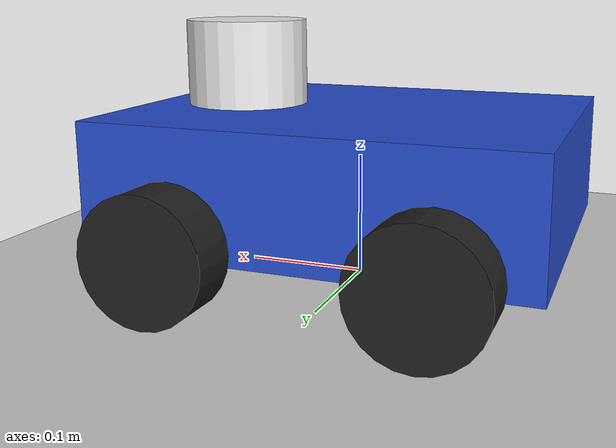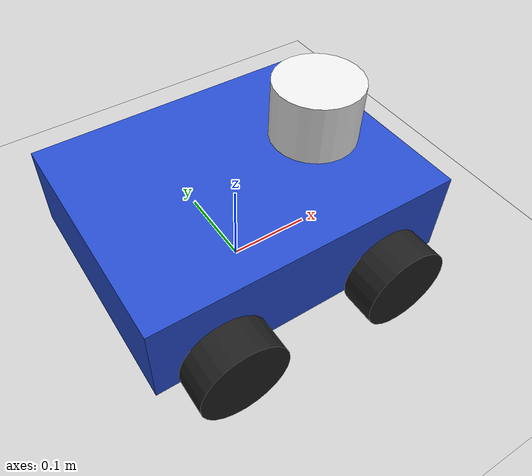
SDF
<sdf version="1.7">
 <world name="default">
  <light name="sun" type="directional">
   <pose>0 0 10 0 -0 0</pose>
   <diffuse>0.8 0.8 0.8 1</diffuse>
   <specular>0.2 0.2 0.2 1</specular>
   <attenuation>
    <range>1000</range>
    <constant>0.9</constant>
    <linear>0.01</linear>
    <quadratic>0.001</quadratic>
   </attenuation>
   <direction>-0.5 0.1 -0.9</direction>
   <spot><inner_angle>0</inner_angle><outer_angle>0</outer_angle><falloff>0</falloff></spot>
  </light>
  <model name="ground_plane">
   <static>1</static>
   <link name="link">
    <collision name="collision">
     <geometry><plane><normal>0 0 1</normal><size>100 100</size></plane></geometry>
     <surface>
      <contact><collide_bitmask>65535</collide_bitmask></contact>
      <friction><ode><mu>100</mu><mu2>50</mu2></ode></friction>
     </surface>
    </collision>
    <visual name="visual">
     <cast_shadows>0</cast_shadows>
     <geometry><plane><normal>0 0 1</normal><size>100 100</size></plane></geometry>
     <material>
      <script><uri>file://media/materials/scripts/gazebo.material</uri><name>Gazebo/Grey</name></script>
     </material>
    </visual>
   </link>
  </model>
  <gravity>0 0 -9.8</gravity>
  <magnetic_field>6e-06 2.3e-05 -4.2e-05</magnetic_field>
  <atmosphere type="adiabatic"/>
  <physics type="ode">
   <max_step_size>0.001</max_step_size>
   <real_time_factor>1</real_time_factor>
   <real_time_update_rate>1000</real_time_update_rate>
  </physics>
  <scene><ambient>0.4 0.4 0.4 1</ambient><background>0.7 0.7 0.7 1</background><shadows>1</shadows></scene>
  <spherical_coordinates>
   <surface_model>EARTH_WGS84</surface_model>
   <latitude_deg>0</latitude_deg>
   <longitude_deg>0</longitude_deg>
   <elevation>0</elevation>
   <heading_deg>0</heading_deg>
  </spherical_coordinates>
  <model name="nanobot">
   <link name="base_footprint">
    <inertial>
     <pose>0 0 0.07 0 -0 0</pose>
     <mass>1</mass>
     <inertia>
      <ixx>0.0015</ixx>
      <ixy>0</ixy>
      <ixz>0</ixz>
      <iyy>0.0041667</iyy>
      <iyz>0</iyz>
      <izz>0.00054167</izz>
     </inertia>
    </inertial>
    <collision name="base_footprint_fixed_joint_lump__collision_chasis_collision">
     <pose>0 0 0.07 0 -0 0</pose>
     <geometry><box><size>0.35 0.27 0.1</size></box></geometry>
    </collision>
    <collision name="base_footprint_fixed_joint_lump__collision_laser_link_collision_1">
     <pose>0.1 0 0.14 0 -0 0</pose>
     <geometry><cylinder><length>0.1</length><radius>0.05</radius></cylinder></geometry>
    </collision>
    <visual name="base_footprint_fixed_joint_lump__base_link_visual">
     <pose>0 0 0.07 0 -0 0</pose>
     <geometry><box><size>0.35 0.27 0.1</size></box></geometry>
     <material>
      <script><name>Gazebo/Blue</name><uri>file://media/materials/scripts/gazebo.material</uri></script>
     </material>
    </visual>
    <visual name="base_footprint_fixed_joint_lump__laser_sensor_link_visual_1">
     <pose>0.1 0 0.14 0 -0 0</pose>
     <geometry><cylinder><length>0.1</length><radius>0.05</radius></cylinder></geometry>
     <material>
      <script><name>Gazebo/White</name><uri>file://media/materials/scripts/gazebo.material</uri></script>
     </material>
    </visual>
    <sensor name="RP_LIDAR_S2" type="ray">
     <visualize>0</visualize>
     <update_rate>10</update_rate>
     <ray>
      <scan>
       <horizontal>
        <samples>720</samples>
        <resolution>1</resolution>
        <min_angle>-3.14159</min_angle>
        <max_angle>3.14159</max_angle>
       </horizontal>
       <vertical><samples>1</samples><min_angle>0</min_angle><max_angle>0</max_angle></vertical>
      </scan>
      <range><min>0.1</min><max>20</max><resolution>0.01</resolution></range>
     </ray>
     <plugin name="gazebo_ros_head_hokuyo_controller" filename="libgazebo_ros_laser.so">
      <topicName>/nanobot/laser/scan</topicName>
      <frameName>laser_sensor_link</frameName>
      <robotNamespace>/</robotNamespace>
     </plugin>
     <pose>0.1 0 0.14 0 -0 0</pose>
    </sensor>
   </link>
   <joint name="base_link_to_front_wheel_left" type="revolute">
    <pose relative_to="base_footprint">0.1 0.155 0.03 0 -0 0</pose>
    <parent>base_footprint</parent>
    <child>front_wheel_left</child>
    <axis>
     <xyz>0 1 0</xyz>
     <limit><lower>-1e+16</lower><upper>1e+16</upper></limit>
     <dynamics><spring_reference>0</spring_reference><spring_stiffness>0</spring_stiffness></dynamics>
    </axis>
   </joint>
   <link name="front_wheel_left">
    <pose relative_to="base_link_to_front_wheel_left">0 0 0 0 -0 0</pose>
    <inertial>
     <pose>0 0 0 3.14159 1.57079 3.14159</pose>
     <mass>0.1</mass>
     <inertia>
      <ixx>5.333e-05</ixx>
      <ixy>0</ixy>
      <ixz>0</ixz>
      <iyy>5.333e-05</iyy>
      <iyz>0</iyz>
      <izz>8e-05</izz>
     </inertia>
    </inertial>
    <collision name="front_wheel_left_collision_collision">
     <pose>0 0 0 1.57079 1.57079 3.14159</pose>
     <geometry><cylinder><length>0.04</length><radius>0.05</radius></cylinder></geometry>
    </collision>
    <visual name="front_wheel_left_visual">
     <pose>0 0 0 1.57079 1.57079 3.14159</pose>
     <geometry><cylinder><length>0.04</length><radius>0.05</radius></cylinder></geometry>
     <material>
      <script><name>Gazebo/Black</name><uri>file://media/materials/scripts/gazebo.material</uri></script>
     </material>
    </visual>
   </link>
   <joint name="base_link_to_front_wheel_right" type="revolute">
    <pose relative_to="base_footprint">0.1 -0.155 0.03 0 -0 0</pose>
    <parent>base_footprint</parent>
    <child>front_wheel_right</child>
    <axis>
     <xyz>0 1 0</xyz>
     <limit><lower>-1e+16</lower><upper>1e+16</upper></limit>
     <dynamics><spring_reference>0</spring_reference><spring_stiffness>0</spring_stiffness></dynamics>
    </axis>
   </joint>
   <link name="front_wheel_right">
    <pose relative_to="base_link_to_front_wheel_right">0 0 0 0 -0 0</pose>
    <inertial>
     <pose>0 0 0 3.14159 1.57079 3.14159</pose>
     <mass>0.1</mass>
     <inertia>
      <ixx>5.333e-05</ixx>
      <ixy>0</ixy>
      <ixz>0</ixz>
      <iyy>5.333e-05</iyy>
      <iyz>0</iyz>
      <izz>8e-05</izz>
     </inertia>
    </inertial>
    <collision name="front_wheel_right_collision_collision">
     <pose>0 0 0 1.57079 1.57079 3.14159</pose>
     <geometry><cylinder><length>0.04</length><radius>0.05</radius></cylinder></geometry>
    </collision>
    <visual name="front_wheel_right_visual">
     <pose>0 0 0 1.57079 1.57079 3.14159</pose>
     <geometry><cylinder><length>0.04</length><radius>0.05</radius></cylinder></geometry>
     <material>
      <script><name>Gazebo/Black</name><uri>file://media/materials/scripts/gazebo.material</uri></script>
     </material>
    </visual>
   </link>
   <joint name="base_link_to_rear_wheel_left" type="revolute">
    <pose relative_to="base_footprint">-0.1 0.155 0.03 0 -0 0</pose>
    <parent>base_footprint</parent>
    <child>rear_wheel_left</child>
    <axis>
     <xyz>0 1 0</xyz>
     <limit><lower>-1e+16</lower><upper>1e+16</upper></limit>
     <dynamics><spring_reference>0</spring_reference><spring_stiffness>0</spring_stiffness></dynamics>
    </axis>
   </joint>
   <link name="rear_wheel_left">
    <pose relative_to="base_link_to_rear_wheel_left">0 0 0 0 -0 0</pose>
    <inertial>
     <pose>0 0 0 3.14159 1.57079 3.14159</pose>
     <mass>0.1</mass>
     <inertia>
      <ixx>5.333e-05</ixx>
      <ixy>0</ixy>
      <ixz>0</ixz>
      <iyy>5.333e-05</iyy>
      <iyz>0</iyz>
      <izz>8e-05</izz>
     </inertia>
    </inertial>
    <collision name="rear_wheel_left_collision_collision">
     <pose>0 0 0 1.57079 1.57079 3.14159</pose>
     <geometry><cylinder><length>0.04</length><radius>0.05</radius></cylinder></geometry>
    </collision>
    <visual name="rear_wheel_left_visual">
     <pose>0 0 0 1.57079 1.57079 3.14159</pose>
     <geometry><cylinder><length>0.04</length><radius>0.05</radius></cylinder></geometry>
     <material>
      <script><name>Gazebo/Black</name><uri>file://media/materials/scripts/gazebo.material</uri></script>
     </material>
    </visual>
   </link>
   <joint name="base_link_to_rear_wheel_right" type="revolute">
    <pose relative_to="base_footprint">-0.1 -0.155 0.03 0 -0 0</pose>
    <parent>base_footprint</parent>
    <child>rear_wheel_right</child>
    <axis>
     <xyz>0 1 0</xyz>
     <limit><lower>-1e+16</lower><upper>1e+16</upper></limit>
     <dynamics><spring_reference>0</spring_reference><spring_stiffness>0</spring_stiffness></dynamics>
    </axis>
   </joint>
   <link name="rear_wheel_right">
    <pose relative_to="base_link_to_rear_wheel_right">0 0 0 0 -0 0</pose>
    <inertial>
     <pose>0 0 0 3.14159 1.57079 3.14159</pose>
     <mass>0.1</mass>
     <inertia>
      <ixx>5.333e-05</ixx>
      <ixy>0</ixy>
      <ixz>0</ixz>
      <iyy>5.333e-05</iyy>
      <iyz>0</iyz>
      <izz>8e-05</izz>
     </inertia>
    </inertial>
    <collision name="rear_wheel_right_collision_collision">
     <pose>0 0 0 1.57079 1.57079 3.14159</pose>
     <geometry><cylinder><length>0.04</length><radius>0.05</radius></cylinder></geometry>
    </collision>
    <visual name="rear_wheel_right_visual">
     <pose>0 0 0 1.57079 1.57079 3.14159</pose>
     <geometry><cylinder><length>0.04</length><radius>0.05</radius></cylinder></geometry>
     <material>
      <script><name>Gazebo/Black</name><uri>file://media/materials/scripts/gazebo.material</uri></script>
     </material>
    </visual>
   </link>
   <static>0</static>
   <plugin name="skid_steer_drive_controller" filename="libgazebo_ros_skid_steer_drive.so">
    <updateRate>10.0</updateRate>
    <robotNamespace>/</robotNamespace>
    <leftFrontJoint>base_link_to_front_wheel_left</leftFrontJoint>
    <rightFrontJoint>base_link_to_front_wheel_right</rightFrontJoint>
    <leftRearJoint>base_link_to_rear_wheel_left</leftRearJoint>
    <rightRearJoint>base_link_to_rear_wheel_right</rightRearJoint>
    <wheelSeparation>0.31</wheelSeparation>
    <wheelDiameter>0.1</wheelDiameter>
    <robotBaseFrame>base_footprint</robotBaseFrame>
    <torque>20</torque>
    <topicName>/cmd_vel</topicName>
    <broadcastTF>1</broadcastTF>
    <odometryTopic>/odom</odometryTopic>
    <odometryFrame>odom</odometryFrame>
    <odometryRate>10.0</odometryRate>
   </plugin>
   <pose>0.001535 0.000211 0.020001 -1e-06 -0 2.5e-05</pose>
  </model>
 </world>
</sdf>
